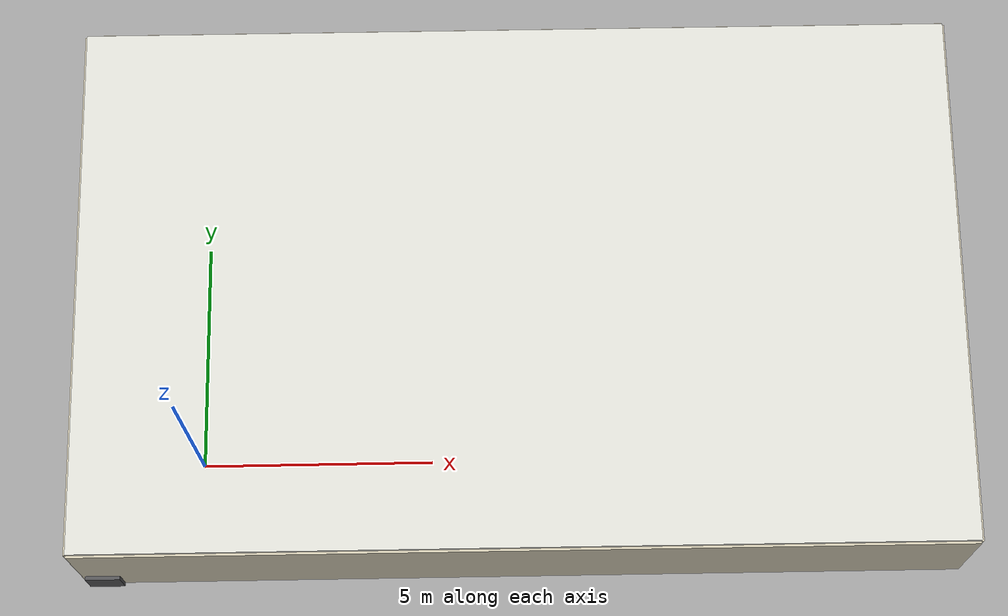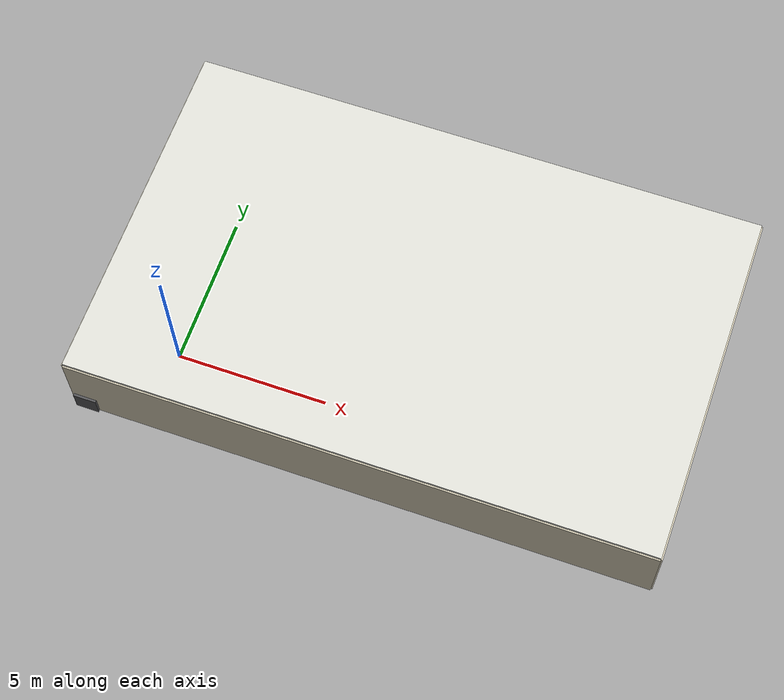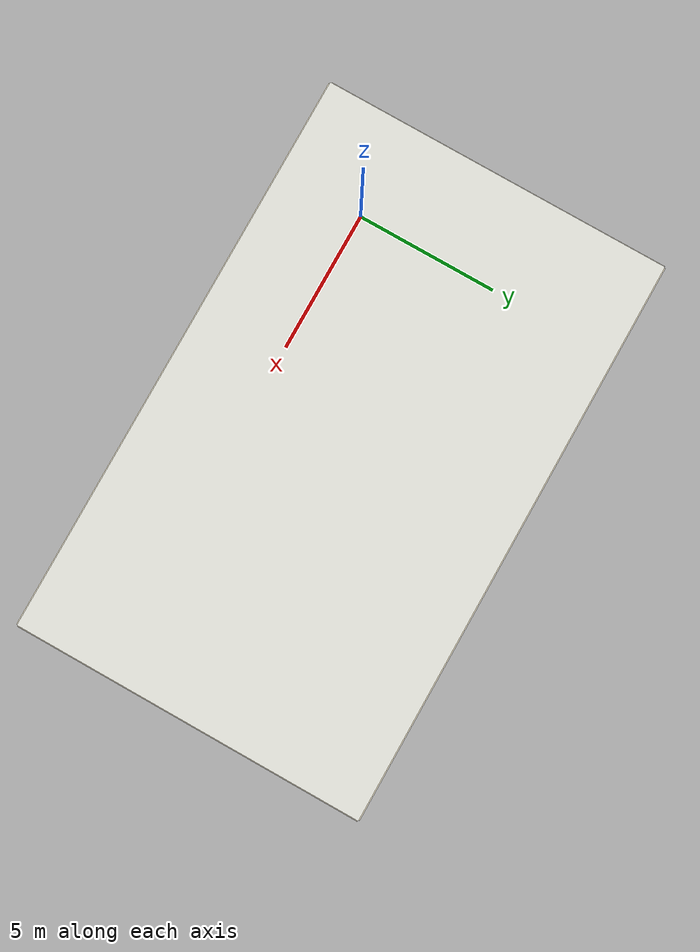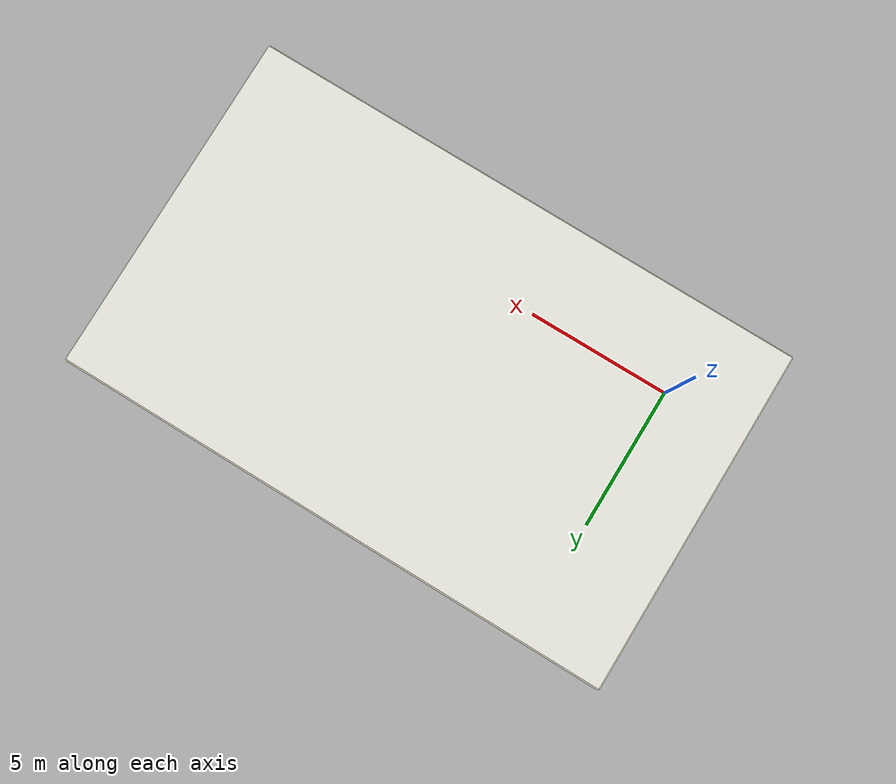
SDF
<?xml version="1.0" ?>
<sdf version='1.7'>
  <world name='default'>
    <plugin name='gazebo_ros_state' filename='libgazebo_ros_state.so'>
      <ros>
        <namespace>/</namespace>
      </ros>
      <update_rate>1000.0</update_rate>
    </plugin>

    <light name='sun' type='directional'>
      <cast_shadows>1</cast_shadows>
      <pose>0 0 10 0 -0 0</pose>
      <diffuse>0.25 0.25 0.24 1</diffuse>
      <specular>0.2 0.2 0.2 1</specular>
      <attenuation>
        <range>1000</range>
        <constant>0.9</constant>
        <linear>0.01</linear>
        <quadratic>0.001</quadratic>
      </attenuation>
      <direction>0.05 0.02 -1.0</direction>
      <spot>
        <inner_angle>0</inner_angle>
        <outer_angle>0</outer_angle>
        <falloff>0</falloff>
      </spot>
    </light>
    <model name='ground_plane'>
      <static>1</static>
      <link name='link'>
        <collision name='collision'>
          <geometry>
            <plane>
              <normal>0 0 1</normal>
              <size>100 100</size>
            </plane>
          </geometry>
          <surface>
            <friction>
              <ode>
                <mu>100</mu>
                <mu2>50</mu2>
              </ode>
              <torsional>
                <ode/>
              </torsional>
            </friction>
            <contact>
              <ode/>
            </contact>
            <bounce/>
          </surface>
          <max_contacts>10</max_contacts>
        </collision>
        <self_collide>0</self_collide>
        <enable_wind>0</enable_wind>
        <kinematic>0</kinematic>
      </link>
    </model>
    <gravity>0 0 -9.8</gravity>
    <magnetic_field>6e-06 2.3e-05 -4.2e-05</magnetic_field>
    <atmosphere type='adiabatic'/>
    <physics type='ode'>
      <max_step_size>0.001</max_step_size>
      <real_time_factor>1</real_time_factor>
      <real_time_update_rate>1000</real_time_update_rate>
    </physics>
    <scene>
      <ambient>0.68 0.68 0.66 1</ambient>
      <background>0.80 0.77 0.68 1</background>
      <shadows>1</shadows>
    </scene>
    <audio>
      <device>default</device>
    </audio>
    <wind/>
    <spherical_coordinates>
      <surface_model>EARTH_WGS84</surface_model>
      <latitude_deg>0</latitude_deg>
      <longitude_deg>0</longitude_deg>
      <elevation>0</elevation>
      <heading_deg>0</heading_deg>
    </spherical_coordinates>
    <model name='lab_12'>
    <static>1</static>
    <pose>0 0 0.001 0 0 0</pose>
    <link name='floor'>
      <visual name='floor_visual'>
        <cast_shadows>0</cast_shadows>
        <geometry><mesh><uri>model://lab_12/meshes/floor.obj</uri></mesh></geometry>
      </visual>
    </link>
    <link name='ducts'>
      <visual name='ducts_visual'>
        <geometry><mesh><uri>model://lab_12/meshes/ducts.obj</uri></mesh></geometry>
      </visual>
      <collision name='ducts_collision'>
        <geometry><mesh><uri>model://lab_12/meshes/ducts.obj</uri></mesh></geometry>
      </collision>
    </link>
    <link name='wall_0'>
      <pose>6.967 9.108 1.350 0 0 0.000</pose>
      <visual name='wall_0_visual'>
        <cast_shadows>0</cast_shadows>
        <geometry><box><size>18.885 0.100 2.700</size></box></geometry>
        <material><ambient>0.80 0.77 0.68 1</ambient><diffuse>0.80 0.77 0.68 1</diffuse></material>
      </visual>
    </link>
    <link name='wall_1'>
      <pose>6.967 -2.501 1.350 0 0 0.000</pose>
      <visual name='wall_1_visual'>
        <cast_shadows>0</cast_shadows>
        <geometry><box><size>18.885 0.100 2.700</size></box></geometry>
        <material><ambient>0.80 0.77 0.68 1</ambient><diffuse>0.80 0.77 0.68 1</diffuse></material>
      </visual>
    </link>
    <link name='wall_2'>
      <pose>-2.475 3.304 1.350 0 0 0.000</pose>
      <visual name='wall_2_visual'>
        <cast_shadows>0</cast_shadows>
        <geometry><box><size>0.100 11.608 2.700</size></box></geometry>
        <material><ambient>0.80 0.77 0.68 1</ambient><diffuse>0.80 0.77 0.68 1</diffuse></material>
      </visual>
    </link>
    <link name='wall_3'>
      <pose>16.410 3.304 1.350 0 0 0.000</pose>
      <visual name='wall_3_visual'>
        <cast_shadows>0</cast_shadows>
        <geometry><box><size>0.100 11.608 2.700</size></box></geometry>
        <material><ambient>0.80 0.77 0.68 1</ambient><diffuse>0.80 0.77 0.68 1</diffuse></material>
      </visual>
    </link>
    <link name='ceiling'>
      <pose>6.967 3.304 2.750 0 0 0.000</pose>
      <visual name='ceiling_visual'>
        <cast_shadows>0</cast_shadows>
        <geometry><box><size>18.885 11.608 0.100</size></box></geometry>
        <material><ambient>0.85 0.85 0.82 1</ambient><diffuse>0.85 0.85 0.82 1</diffuse></material>
      </visual>
    </link>
    <link name='panel_0_0'>
      <pose>-0.975 -1.001 2.690 0 0 0.000</pose>
      <visual name='panel_0_0_visual'>
        <cast_shadows>0</cast_shadows>
        <geometry><box><size>1.200 0.600 0.020</size></box></geometry>
        <material><ambient>1.00 1.00 1.00 1</ambient><diffuse>1.00 1.00 1.00 1</diffuse><emissive>1.00 1.00 1.00 1</emissive></material>
      </visual>
    </link>
    <link name='panel_0_1'>
      <pose>-0.975 1.399 2.690 0 0 0.000</pose>
      <visual name='panel_0_1_visual'>
        <cast_shadows>0</cast_shadows>
        <geometry><box><size>1.200 0.600 0.020</size></box></geometry>
        <material><ambient>1.00 1.00 1.00 1</ambient><diffuse>1.00 1.00 1.00 1</diffuse><emissive>1.00 1.00 1.00 1</emissive></material>
      </visual>
    </link>
    <link name='panel_0_2'>
      <pose>-0.975 3.799 2.690 0 0 0.000</pose>
      <visual name='panel_0_2_visual'>
        <cast_shadows>0</cast_shadows>
        <geometry><box><size>1.200 0.600 0.020</size></box></geometry>
        <material><ambient>1.00 1.00 1.00 1</ambient><diffuse>1.00 1.00 1.00 1</diffuse><emissive>1.00 1.00 1.00 1</emissive></material>
      </visual>
    </link>
    <link name='panel_0_3'>
      <pose>-0.975 6.199 2.690 0 0 0.000</pose>
      <visual name='panel_0_3_visual'>
        <cast_shadows>0</cast_shadows>
        <geometry><box><size>1.200 0.600 0.020</size></box></geometry>
        <material><ambient>1.00 1.00 1.00 1</ambient><diffuse>1.00 1.00 1.00 1</diffuse><emissive>1.00 1.00 1.00 1</emissive></material>
      </visual>
    </link>
    <link name='panel_1_0'>
      <pose>1.425 -1.001 2.690 0 0 0.000</pose>
      <visual name='panel_1_0_visual'>
        <cast_shadows>0</cast_shadows>
        <geometry><box><size>1.200 0.600 0.020</size></box></geometry>
        <material><ambient>1.00 1.00 1.00 1</ambient><diffuse>1.00 1.00 1.00 1</diffuse><emissive>1.00 1.00 1.00 1</emissive></material>
      </visual>
    </link>
    <link name='panel_1_1'>
      <pose>1.425 1.399 2.690 0 0 0.000</pose>
      <visual name='panel_1_1_visual'>
        <cast_shadows>0</cast_shadows>
        <geometry><box><size>1.200 0.600 0.020</size></box></geometry>
        <material><ambient>1.00 1.00 1.00 1</ambient><diffuse>1.00 1.00 1.00 1</diffuse><emissive>1.00 1.00 1.00 1</emissive></material>
      </visual>
    </link>
    <link name='panel_1_2'>
      <pose>1.425 3.799 2.690 0 0 0.000</pose>
      <visual name='panel_1_2_visual'>
        <cast_shadows>0</cast_shadows>
        <geometry><box><size>1.200 0.600 0.020</size></box></geometry>
        <material><ambient>1.00 1.00 1.00 1</ambient><diffuse>1.00 1.00 1.00 1</diffuse><emissive>1.00 1.00 1.00 1</emissive></material>
      </visual>
    </link>
    <link name='panel_1_3'>
      <pose>1.425 6.199 2.690 0 0 0.000</pose>
      <visual name='panel_1_3_visual'>
        <cast_shadows>0</cast_shadows>
        <geometry><box><size>1.200 0.600 0.020</size></box></geometry>
        <material><ambient>1.00 1.00 1.00 1</ambient><diffuse>1.00 1.00 1.00 1</diffuse><emissive>1.00 1.00 1.00 1</emissive></material>
      </visual>
    </link>
    <link name='panel_2_0'>
      <pose>3.825 -1.001 2.690 0 0 0.000</pose>
      <visual name='panel_2_0_visual'>
        <cast_shadows>0</cast_shadows>
        <geometry><box><size>1.200 0.600 0.020</size></box></geometry>
        <material><ambient>1.00 1.00 1.00 1</ambient><diffuse>1.00 1.00 1.00 1</diffuse><emissive>1.00 1.00 1.00 1</emissive></material>
      </visual>
    </link>
    <link name='panel_2_1'>
      <pose>3.825 1.399 2.690 0 0 0.000</pose>
      <visual name='panel_2_1_visual'>
        <cast_shadows>0</cast_shadows>
        <geometry><box><size>1.200 0.600 0.020</size></box></geometry>
        <material><ambient>1.00 1.00 1.00 1</ambient><diffuse>1.00 1.00 1.00 1</diffuse><emissive>1.00 1.00 1.00 1</emissive></material>
      </visual>
    </link>
    <link name='panel_2_2'>
      <pose>3.825 3.799 2.690 0 0 0.000</pose>
      <visual name='panel_2_2_visual'>
        <cast_shadows>0</cast_shadows>
        <geometry><box><size>1.200 0.600 0.020</size></box></geometry>
        <material><ambient>1.00 1.00 1.00 1</ambient><diffuse>1.00 1.00 1.00 1</diffuse><emissive>1.00 1.00 1.00 1</emissive></material>
      </visual>
    </link>
    <link name='panel_2_3'>
      <pose>3.825 6.199 2.690 0 0 0.000</pose>
      <visual name='panel_2_3_visual'>
        <cast_shadows>0</cast_shadows>
        <geometry><box><size>1.200 0.600 0.020</size></box></geometry>
        <material><ambient>1.00 1.00 1.00 1</ambient><diffuse>1.00 1.00 1.00 1</diffuse><emissive>1.00 1.00 1.00 1</emissive></material>
      </visual>
    </link>
    <link name='panel_3_0'>
      <pose>6.225 -1.001 2.690 0 0 0.000</pose>
      <visual name='panel_3_0_visual'>
        <cast_shadows>0</cast_shadows>
        <geometry><box><size>1.200 0.600 0.020</size></box></geometry>
        <material><ambient>1.00 1.00 1.00 1</ambient><diffuse>1.00 1.00 1.00 1</diffuse><emissive>1.00 1.00 1.00 1</emissive></material>
      </visual>
    </link>
    <link name='panel_3_1'>
      <pose>6.225 1.399 2.690 0 0 0.000</pose>
      <visual name='panel_3_1_visual'>
        <cast_shadows>0</cast_shadows>
        <geometry><box><size>1.200 0.600 0.020</size></box></geometry>
        <material><ambient>1.00 1.00 1.00 1</ambient><diffuse>1.00 1.00 1.00 1</diffuse><emissive>1.00 1.00 1.00 1</emissive></material>
      </visual>
    </link>
    <link name='panel_3_2'>
      <pose>6.225 3.799 2.690 0 0 0.000</pose>
      <visual name='panel_3_2_visual'>
        <cast_shadows>0</cast_shadows>
        <geometry><box><size>1.200 0.600 0.020</size></box></geometry>
        <material><ambient>1.00 1.00 1.00 1</ambient><diffuse>1.00 1.00 1.00 1</diffuse><emissive>1.00 1.00 1.00 1</emissive></material>
      </visual>
    </link>
    <link name='panel_3_3'>
      <pose>6.225 6.199 2.690 0 0 0.000</pose>
      <visual name='panel_3_3_visual'>
        <cast_shadows>0</cast_shadows>
        <geometry><box><size>1.200 0.600 0.020</size></box></geometry>
        <material><ambient>1.00 1.00 1.00 1</ambient><diffuse>1.00 1.00 1.00 1</diffuse><emissive>1.00 1.00 1.00 1</emissive></material>
      </visual>
    </link>
    <link name='panel_4_0'>
      <pose>8.625 -1.001 2.690 0 0 0.000</pose>
      <visual name='panel_4_0_visual'>
        <cast_shadows>0</cast_shadows>
        <geometry><box><size>1.200 0.600 0.020</size></box></geometry>
        <material><ambient>1.00 1.00 1.00 1</ambient><diffuse>1.00 1.00 1.00 1</diffuse><emissive>1.00 1.00 1.00 1</emissive></material>
      </visual>
    </link>
    <link name='panel_4_1'>
      <pose>8.625 1.399 2.690 0 0 0.000</pose>
      <visual name='panel_4_1_visual'>
        <cast_shadows>0</cast_shadows>
        <geometry><box><size>1.200 0.600 0.020</size></box></geometry>
        <material><ambient>1.00 1.00 1.00 1</ambient><diffuse>1.00 1.00 1.00 1</diffuse><emissive>1.00 1.00 1.00 1</emissive></material>
      </visual>
    </link>
    <link name='panel_4_2'>
      <pose>8.625 3.799 2.690 0 0 0.000</pose>
      <visual name='panel_4_2_visual'>
        <cast_shadows>0</cast_shadows>
        <geometry><box><size>1.200 0.600 0.020</size></box></geometry>
        <material><ambient>1.00 1.00 1.00 1</ambient><diffuse>1.00 1.00 1.00 1</diffuse><emissive>1.00 1.00 1.00 1</emissive></material>
      </visual>
    </link>
    <link name='panel_4_3'>
      <pose>8.625 6.199 2.690 0 0 0.000</pose>
      <visual name='panel_4_3_visual'>
        <cast_shadows>0</cast_shadows>
        <geometry><box><size>1.200 0.600 0.020</size></box></geometry>
        <material><ambient>1.00 1.00 1.00 1</ambient><diffuse>1.00 1.00 1.00 1</diffuse><emissive>1.00 1.00 1.00 1</emissive></material>
      </visual>
    </link>
    <link name='panel_5_0'>
      <pose>11.025 -1.001 2.690 0 0 0.000</pose>
      <visual name='panel_5_0_visual'>
        <cast_shadows>0</cast_shadows>
        <geometry><box><size>1.200 0.600 0.020</size></box></geometry>
        <material><ambient>1.00 1.00 1.00 1</ambient><diffuse>1.00 1.00 1.00 1</diffuse><emissive>1.00 1.00 1.00 1</emissive></material>
      </visual>
    </link>
    <link name='panel_5_1'>
      <pose>11.025 1.399 2.690 0 0 0.000</pose>
      <visual name='panel_5_1_visual'>
        <cast_shadows>0</cast_shadows>
        <geometry><box><size>1.200 0.600 0.020</size></box></geometry>
        <material><ambient>1.00 1.00 1.00 1</ambient><diffuse>1.00 1.00 1.00 1</diffuse><emissive>1.00 1.00 1.00 1</emissive></material>
      </visual>
    </link>
    <link name='panel_5_2'>
      <pose>11.025 3.799 2.690 0 0 0.000</pose>
      <visual name='panel_5_2_visual'>
        <cast_shadows>0</cast_shadows>
        <geometry><box><size>1.200 0.600 0.020</size></box></geometry>
        <material><ambient>1.00 1.00 1.00 1</ambient><diffuse>1.00 1.00 1.00 1</diffuse><emissive>1.00 1.00 1.00 1</emissive></material>
      </visual>
    </link>
    <link name='panel_5_3'>
      <pose>11.025 6.199 2.690 0 0 0.000</pose>
      <visual name='panel_5_3_visual'>
        <cast_shadows>0</cast_shadows>
        <geometry><box><size>1.200 0.600 0.020</size></box></geometry>
        <material><ambient>1.00 1.00 1.00 1</ambient><diffuse>1.00 1.00 1.00 1</diffuse><emissive>1.00 1.00 1.00 1</emissive></material>
      </visual>
    </link>
    <link name='panel_6_0'>
      <pose>13.425 -1.001 2.690 0 0 0.000</pose>
      <visual name='panel_6_0_visual'>
        <cast_shadows>0</cast_shadows>
        <geometry><box><size>1.200 0.600 0.020</size></box></geometry>
        <material><ambient>1.00 1.00 1.00 1</ambient><diffuse>1.00 1.00 1.00 1</diffuse><emissive>1.00 1.00 1.00 1</emissive></material>
      </visual>
    </link>
    <link name='panel_6_1'>
      <pose>13.425 1.399 2.690 0 0 0.000</pose>
      <visual name='panel_6_1_visual'>
        <cast_shadows>0</cast_shadows>
        <geometry><box><size>1.200 0.600 0.020</size></box></geometry>
        <material><ambient>1.00 1.00 1.00 1</ambient><diffuse>1.00 1.00 1.00 1</diffuse><emissive>1.00 1.00 1.00 1</emissive></material>
      </visual>
    </link>
    <link name='panel_6_2'>
      <pose>13.425 3.799 2.690 0 0 0.000</pose>
      <visual name='panel_6_2_visual'>
        <cast_shadows>0</cast_shadows>
        <geometry><box><size>1.200 0.600 0.020</size></box></geometry>
        <material><ambient>1.00 1.00 1.00 1</ambient><diffuse>1.00 1.00 1.00 1</diffuse><emissive>1.00 1.00 1.00 1</emissive></material>
      </visual>
    </link>
    <link name='panel_6_3'>
      <pose>13.425 6.199 2.690 0 0 0.000</pose>
      <visual name='panel_6_3_visual'>
        <cast_shadows>0</cast_shadows>
        <geometry><box><size>1.200 0.600 0.020</size></box></geometry>
        <material><ambient>1.00 1.00 1.00 1</ambient><diffuse>1.00 1.00 1.00 1</diffuse><emissive>1.00 1.00 1.00 1</emissive></material>
      </visual>
    </link>
    <link name='p0'>
      <pose>0.590 8.798 0.650 0 0 0.000</pose>
      <visual name='p0_visual'>
        <cast_shadows>0</cast_shadows>
        <geometry><box><size>0.900 0.500 1.300</size></box></geometry>
        <material><ambient>0.25 0.33 0.36 1</ambient><diffuse>0.25 0.33 0.36 1</diffuse></material>
      </visual>
    </link>
    <link name='p1'>
      <pose>3.643 8.798 0.650 0 0 0.000</pose>
      <visual name='p1_visual'>
        <cast_shadows>0</cast_shadows>
        <geometry><box><size>0.900 0.500 1.300</size></box></geometry>
        <material><ambient>0.25 0.33 0.36 1</ambient><diffuse>0.25 0.33 0.36 1</diffuse></material>
      </visual>
    </link>
    <link name='p2'>
      <pose>5.732 8.823 0.925 0 0 0.000</pose>
      <visual name='p2_visual'>
        <cast_shadows>0</cast_shadows>
        <geometry><box><size>0.300 0.450 1.850</size></box></geometry>
        <material><ambient>0.55 0.57 0.58 1</ambient><diffuse>0.55 0.57 0.58 1</diffuse></material>
      </visual>
    </link>
    <link name='p3'>
      <pose>6.042 8.823 0.925 0 0 0.000</pose>
      <visual name='p3_visual'>
        <cast_shadows>0</cast_shadows>
        <geometry><box><size>0.300 0.450 1.850</size></box></geometry>
        <material><ambient>0.55 0.57 0.58 1</ambient><diffuse>0.55 0.57 0.58 1</diffuse></material>
      </visual>
    </link>
    <link name='p4'>
      <pose>6.352 8.823 0.925 0 0 0.000</pose>
      <visual name='p4_visual'>
        <cast_shadows>0</cast_shadows>
        <geometry><box><size>0.300 0.450 1.850</size></box></geometry>
        <material><ambient>0.55 0.57 0.58 1</ambient><diffuse>0.55 0.57 0.58 1</diffuse></material>
      </visual>
    </link>
    <link name='p5'>
      <pose>6.662 8.823 0.925 0 0 0.000</pose>
      <visual name='p5_visual'>
        <cast_shadows>0</cast_shadows>
        <geometry><box><size>0.300 0.450 1.850</size></box></geometry>
        <material><ambient>0.55 0.57 0.58 1</ambient><diffuse>0.55 0.57 0.58 1</diffuse></material>
      </visual>
    </link>
    <link name='p6'>
      <pose>6.972 8.823 0.925 0 0 0.000</pose>
      <visual name='p6_visual'>
        <cast_shadows>0</cast_shadows>
        <geometry><box><size>0.300 0.450 1.850</size></box></geometry>
        <material><ambient>0.55 0.57 0.58 1</ambient><diffuse>0.55 0.57 0.58 1</diffuse></material>
      </visual>
    </link>
    <link name='p7'>
      <pose>7.282 8.823 0.925 0 0 0.000</pose>
      <visual name='p7_visual'>
        <cast_shadows>0</cast_shadows>
        <geometry><box><size>0.300 0.450 1.850</size></box></geometry>
        <material><ambient>0.55 0.57 0.58 1</ambient><diffuse>0.55 0.57 0.58 1</diffuse></material>
      </visual>
    </link>
    <link name='p8'>
      <pose>7.592 8.823 0.925 0 0 0.000</pose>
      <visual name='p8_visual'>
        <cast_shadows>0</cast_shadows>
        <geometry><box><size>0.300 0.450 1.850</size></box></geometry>
        <material><ambient>0.55 0.57 0.58 1</ambient><diffuse>0.55 0.57 0.58 1</diffuse></material>
      </visual>
    </link>
    <link name='p9'>
      <pose>7.902 8.823 0.925 0 0 0.000</pose>
      <visual name='p9_visual'>
        <cast_shadows>0</cast_shadows>
        <geometry><box><size>0.300 0.450 1.850</size></box></geometry>
        <material><ambient>0.55 0.57 0.58 1</ambient><diffuse>0.55 0.57 0.58 1</diffuse></material>
      </visual>
    </link>
    <link name='p10'>
      <pose>9.319 8.798 0.650 0 0 0.000</pose>
      <visual name='p10_visual'>
        <cast_shadows>0</cast_shadows>
        <geometry><box><size>0.900 0.500 1.300</size></box></geometry>
        <material><ambient>0.25 0.33 0.36 1</ambient><diffuse>0.25 0.33 0.36 1</diffuse></material>
      </visual>
    </link>
    <link name='p11'>
      <pose>11.377 8.798 0.650 0 0 0.000</pose>
      <visual name='p11_visual'>
        <cast_shadows>0</cast_shadows>
        <geometry><box><size>0.900 0.500 1.300</size></box></geometry>
        <material><ambient>0.25 0.33 0.36 1</ambient><diffuse>0.25 0.33 0.36 1</diffuse></material>
      </visual>
    </link>
    <link name='p12'>
      <pose>12.908 8.798 0.225 0 0 0.000</pose>
      <visual name='p12_visual'>
        <cast_shadows>0</cast_shadows>
        <geometry><box><size>0.600 0.500 0.450</size></box></geometry>
        <material><ambient>0.62 0.45 0.28 1</ambient><diffuse>0.62 0.45 0.28 1</diffuse></material>
      </visual>
    </link>
    <link name='p13'>
      <pose>12.908 8.798 0.675 0 0 0.000</pose>
      <visual name='p13_visual'>
        <cast_shadows>0</cast_shadows>
        <geometry><box><size>0.600 0.500 0.450</size></box></geometry>
        <material><ambient>0.62 0.45 0.28 1</ambient><diffuse>0.62 0.45 0.28 1</diffuse></material>
      </visual>
    </link>
    <link name='p14'>
      <pose>16.125 -1.493 0.925 0 0 0.000</pose>
      <visual name='p14_visual'>
        <cast_shadows>0</cast_shadows>
        <geometry><box><size>0.450 0.300 1.850</size></box></geometry>
        <material><ambient>0.55 0.57 0.58 1</ambient><diffuse>0.55 0.57 0.58 1</diffuse></material>
      </visual>
    </link>
    <link name='p15'>
      <pose>16.125 -1.183 0.925 0 0 0.000</pose>
      <visual name='p15_visual'>
        <cast_shadows>0</cast_shadows>
        <geometry><box><size>0.450 0.300 1.850</size></box></geometry>
        <material><ambient>0.55 0.57 0.58 1</ambient><diffuse>0.55 0.57 0.58 1</diffuse></material>
      </visual>
    </link>
    <link name='p16'>
      <pose>16.125 -0.873 0.925 0 0 0.000</pose>
      <visual name='p16_visual'>
        <cast_shadows>0</cast_shadows>
        <geometry><box><size>0.450 0.300 1.850</size></box></geometry>
        <material><ambient>0.55 0.57 0.58 1</ambient><diffuse>0.55 0.57 0.58 1</diffuse></material>
      </visual>
    </link>
    <link name='p17'>
      <pose>16.125 -0.563 0.925 0 0 0.000</pose>
      <visual name='p17_visual'>
        <cast_shadows>0</cast_shadows>
        <geometry><box><size>0.450 0.300 1.850</size></box></geometry>
        <material><ambient>0.55 0.57 0.58 1</ambient><diffuse>0.55 0.57 0.58 1</diffuse></material>
      </visual>
    </link>
    <link name='p18'>
      <pose>16.125 -0.253 0.925 0 0 0.000</pose>
      <visual name='p18_visual'>
        <cast_shadows>0</cast_shadows>
        <geometry><box><size>0.450 0.300 1.850</size></box></geometry>
        <material><ambient>0.55 0.57 0.58 1</ambient><diffuse>0.55 0.57 0.58 1</diffuse></material>
      </visual>
    </link>
    <link name='p19'>
      <pose>16.125 1.684 0.925 0 0 0.000</pose>
      <visual name='p19_visual'>
        <cast_shadows>0</cast_shadows>
        <geometry><box><size>0.450 0.300 1.850</size></box></geometry>
        <material><ambient>0.55 0.57 0.58 1</ambient><diffuse>0.55 0.57 0.58 1</diffuse></material>
      </visual>
    </link>
    <link name='p20'>
      <pose>16.125 1.994 0.925 0 0 0.000</pose>
      <visual name='p20_visual'>
        <cast_shadows>0</cast_shadows>
        <geometry><box><size>0.450 0.300 1.850</size></box></geometry>
        <material><ambient>0.55 0.57 0.58 1</ambient><diffuse>0.55 0.57 0.58 1</diffuse></material>
      </visual>
    </link>
    <link name='p21'>
      <pose>16.125 2.304 0.925 0 0 0.000</pose>
      <visual name='p21_visual'>
        <cast_shadows>0</cast_shadows>
        <geometry><box><size>0.450 0.300 1.850</size></box></geometry>
        <material><ambient>0.55 0.57 0.58 1</ambient><diffuse>0.55 0.57 0.58 1</diffuse></material>
      </visual>
    </link>
    <link name='p22'>
      <pose>16.125 2.614 0.925 0 0 0.000</pose>
      <visual name='p22_visual'>
        <cast_shadows>0</cast_shadows>
        <geometry><box><size>0.450 0.300 1.850</size></box></geometry>
        <material><ambient>0.55 0.57 0.58 1</ambient><diffuse>0.55 0.57 0.58 1</diffuse></material>
      </visual>
    </link>
    <link name='p23'>
      <pose>16.125 2.924 0.925 0 0 0.000</pose>
      <visual name='p23_visual'>
        <cast_shadows>0</cast_shadows>
        <geometry><box><size>0.450 0.300 1.850</size></box></geometry>
        <material><ambient>0.55 0.57 0.58 1</ambient><diffuse>0.55 0.57 0.58 1</diffuse></material>
      </visual>
    </link>
    <link name='p24'>
      <pose>16.125 3.234 0.925 0 0 0.000</pose>
      <visual name='p24_visual'>
        <cast_shadows>0</cast_shadows>
        <geometry><box><size>0.450 0.300 1.850</size></box></geometry>
        <material><ambient>0.55 0.57 0.58 1</ambient><diffuse>0.55 0.57 0.58 1</diffuse></material>
      </visual>
    </link>
    <link name='p25'>
      <pose>16.125 3.544 0.925 0 0 0.000</pose>
      <visual name='p25_visual'>
        <cast_shadows>0</cast_shadows>
        <geometry><box><size>0.450 0.300 1.850</size></box></geometry>
        <material><ambient>0.55 0.57 0.58 1</ambient><diffuse>0.55 0.57 0.58 1</diffuse></material>
      </visual>
    </link>
    <link name='p26'>
      <pose>16.125 3.854 0.925 0 0 0.000</pose>
      <visual name='p26_visual'>
        <cast_shadows>0</cast_shadows>
        <geometry><box><size>0.450 0.300 1.850</size></box></geometry>
        <material><ambient>0.55 0.57 0.58 1</ambient><diffuse>0.55 0.57 0.58 1</diffuse></material>
      </visual>
    </link>
    <link name='p27'>
      <pose>16.100 4.585 0.650 0 0 0.000</pose>
      <visual name='p27_visual'>
        <cast_shadows>0</cast_shadows>
        <geometry><box><size>0.500 0.900 1.300</size></box></geometry>
        <material><ambient>0.25 0.33 0.36 1</ambient><diffuse>0.25 0.33 0.36 1</diffuse></material>
      </visual>
    </link>
    <link name='p28'>
      <pose>-0.119 -2.191 0.225 0 0 0.000</pose>
      <visual name='p28_visual'>
        <cast_shadows>0</cast_shadows>
        <geometry><box><size>0.600 0.500 0.450</size></box></geometry>
        <material><ambient>0.62 0.45 0.28 1</ambient><diffuse>0.62 0.45 0.28 1</diffuse></material>
      </visual>
    </link>
    <link name='p29'>
      <pose>0.914 -2.416 0.375 0 0 0.000</pose>
      <visual name='p29_visual'>
        <cast_shadows>0</cast_shadows>
        <geometry><box><size>1.800 0.050 0.750</size></box></geometry>
        <material><ambient>0.93 0.93 0.92 1</ambient><diffuse>0.93 0.93 0.92 1</diffuse></material>
      </visual>
    </link>
    <link name='p30'>
      <pose>3.360 -2.191 0.225 0 0 0.000</pose>
      <visual name='p30_visual'>
        <cast_shadows>0</cast_shadows>
        <geometry><box><size>0.600 0.500 0.450</size></box></geometry>
        <material><ambient>0.62 0.45 0.28 1</ambient><diffuse>0.62 0.45 0.28 1</diffuse></material>
      </visual>
    </link>
    <link name='p31'>
      <pose>3.360 -2.191 0.675 0 0 0.000</pose>
      <visual name='p31_visual'>
        <cast_shadows>0</cast_shadows>
        <geometry><box><size>0.600 0.500 0.450</size></box></geometry>
        <material><ambient>0.62 0.45 0.28 1</ambient><diffuse>0.62 0.45 0.28 1</diffuse></material>
      </visual>
    </link>
    <link name='p32'>
      <pose>4.629 -2.066 0.375 0 0 0.000</pose>
      <visual name='p32_visual'>
        <cast_shadows>0</cast_shadows>
        <geometry><box><size>1.500 0.750 0.750</size></box></geometry>
        <material><ambient>0.32 0.32 0.33 1</ambient><diffuse>0.32 0.32 0.33 1</diffuse></material>
      </visual>
    </link>
    <link name='p33'>
      <pose>7.197 -2.191 0.225 0 0 0.000</pose>
      <visual name='p33_visual'>
        <cast_shadows>0</cast_shadows>
        <geometry><box><size>0.600 0.500 0.450</size></box></geometry>
        <material><ambient>0.62 0.45 0.28 1</ambient><diffuse>0.62 0.45 0.28 1</diffuse></material>
      </visual>
    </link>
    <link name='p34'>
      <pose>8.345 -2.191 0.225 0 0 0.000</pose>
      <visual name='p34_visual'>
        <cast_shadows>0</cast_shadows>
        <geometry><box><size>0.600 0.500 0.450</size></box></geometry>
        <material><ambient>0.62 0.45 0.28 1</ambient><diffuse>0.62 0.45 0.28 1</diffuse></material>
      </visual>
    </link>
    <link name='p35'>
      <pose>8.345 -2.191 0.675 0 0 0.000</pose>
      <visual name='p35_visual'>
        <cast_shadows>0</cast_shadows>
        <geometry><box><size>0.600 0.500 0.450</size></box></geometry>
        <material><ambient>0.62 0.45 0.28 1</ambient><diffuse>0.62 0.45 0.28 1</diffuse></material>
      </visual>
    </link>
    <link name='p36'>
      <pose>10.467 -2.416 0.375 0 0 0.000</pose>
      <visual name='p36_visual'>
        <cast_shadows>0</cast_shadows>
        <geometry><box><size>1.800 0.050 0.750</size></box></geometry>
        <material><ambient>0.93 0.93 0.92 1</ambient><diffuse>0.93 0.93 0.92 1</diffuse></material>
      </visual>
    </link>
    <link name='p37'>
      <pose>13.845 -2.191 0.650 0 0 0.000</pose>
      <visual name='p37_visual'>
        <cast_shadows>0</cast_shadows>
        <geometry><box><size>0.900 0.500 1.300</size></box></geometry>
        <material><ambient>0.25 0.33 0.36 1</ambient><diffuse>0.25 0.33 0.36 1</diffuse></material>
      </visual>
    </link>
    <link name='p38'>
      <pose>-2.040 -1.882 0.375 0 0 0.000</pose>
      <visual name='p38_visual'>
        <cast_shadows>0</cast_shadows>
        <geometry><box><size>0.750 1.500 0.750</size></box></geometry>
        <material><ambient>0.32 0.32 0.33 1</ambient><diffuse>0.32 0.32 0.33 1</diffuse></material>
      </visual>
    </link>
    <link name='p39'>
      <pose>-2.165 1.001 0.225 0 0 0.000</pose>
      <visual name='p39_visual'>
        <cast_shadows>0</cast_shadows>
        <geometry><box><size>0.500 0.600 0.450</size></box></geometry>
        <material><ambient>0.62 0.45 0.28 1</ambient><diffuse>0.62 0.45 0.28 1</diffuse></material>
      </visual>
    </link>
    <link name='p40'>
      <pose>-2.165 1.001 0.675 0 0 0.000</pose>
      <visual name='p40_visual'>
        <cast_shadows>0</cast_shadows>
        <geometry><box><size>0.500 0.600 0.450</size></box></geometry>
        <material><ambient>0.62 0.45 0.28 1</ambient><diffuse>0.62 0.45 0.28 1</diffuse></material>
      </visual>
    </link>
    <link name='p41'>
      <pose>-2.165 1.001 1.125 0 0 0.000</pose>
      <visual name='p41_visual'>
        <cast_shadows>0</cast_shadows>
        <geometry><box><size>0.500 0.600 0.450</size></box></geometry>
        <material><ambient>0.62 0.45 0.28 1</ambient><diffuse>0.62 0.45 0.28 1</diffuse></material>
      </visual>
    </link>
    <link name='p42'>
      <pose>-2.190 2.273 0.925 0 0 0.000</pose>
      <visual name='p42_visual'>
        <cast_shadows>0</cast_shadows>
        <geometry><box><size>0.450 0.300 1.850</size></box></geometry>
        <material><ambient>0.55 0.57 0.58 1</ambient><diffuse>0.55 0.57 0.58 1</diffuse></material>
      </visual>
    </link>
    <link name='p43'>
      <pose>-2.190 2.583 0.925 0 0 0.000</pose>
      <visual name='p43_visual'>
        <cast_shadows>0</cast_shadows>
        <geometry><box><size>0.450 0.300 1.850</size></box></geometry>
        <material><ambient>0.55 0.57 0.58 1</ambient><diffuse>0.55 0.57 0.58 1</diffuse></material>
      </visual>
    </link>
    <link name='p44'>
      <pose>-2.190 2.893 0.925 0 0 0.000</pose>
      <visual name='p44_visual'>
        <cast_shadows>0</cast_shadows>
        <geometry><box><size>0.450 0.300 1.850</size></box></geometry>
        <material><ambient>0.55 0.57 0.58 1</ambient><diffuse>0.55 0.57 0.58 1</diffuse></material>
      </visual>
    </link>
    <link name='p45'>
      <pose>-2.190 3.203 0.925 0 0 0.000</pose>
      <visual name='p45_visual'>
        <cast_shadows>0</cast_shadows>
        <geometry><box><size>0.450 0.300 1.850</size></box></geometry>
        <material><ambient>0.55 0.57 0.58 1</ambient><diffuse>0.55 0.57 0.58 1</diffuse></material>
      </visual>
    </link>
    <link name='p46'>
      <pose>-2.190 3.513 0.925 0 0 0.000</pose>
      <visual name='p46_visual'>
        <cast_shadows>0</cast_shadows>
        <geometry><box><size>0.450 0.300 1.850</size></box></geometry>
        <material><ambient>0.55 0.57 0.58 1</ambient><diffuse>0.55 0.57 0.58 1</diffuse></material>
      </visual>
    </link>
    <link name='p47'>
      <pose>-2.165 4.757 0.650 0 0 0.000</pose>
      <visual name='p47_visual'>
        <cast_shadows>0</cast_shadows>
        <geometry><box><size>0.500 0.900 1.300</size></box></geometry>
        <material><ambient>0.25 0.33 0.36 1</ambient><diffuse>0.25 0.33 0.36 1</diffuse></material>
      </visual>
    </link>
    <link name='p48'>
      <pose>-2.190 7.116 0.925 0 0 0.000</pose>
      <visual name='p48_visual'>
        <cast_shadows>0</cast_shadows>
        <geometry><box><size>0.450 0.300 1.850</size></box></geometry>
        <material><ambient>0.55 0.57 0.58 1</ambient><diffuse>0.55 0.57 0.58 1</diffuse></material>
      </visual>
    </link>
    <link name='p49'>
      <pose>-2.190 7.426 0.925 0 0 0.000</pose>
      <visual name='p49_visual'>
        <cast_shadows>0</cast_shadows>
        <geometry><box><size>0.450 0.300 1.850</size></box></geometry>
        <material><ambient>0.55 0.57 0.58 1</ambient><diffuse>0.55 0.57 0.58 1</diffuse></material>
      </visual>
    </link>
    <link name='p50'>
      <pose>-2.190 7.736 0.925 0 0 0.000</pose>
      <visual name='p50_visual'>
        <cast_shadows>0</cast_shadows>
        <geometry><box><size>0.450 0.300 1.850</size></box></geometry>
        <material><ambient>0.55 0.57 0.58 1</ambient><diffuse>0.55 0.57 0.58 1</diffuse></material>
      </visual>
    </link>
    <link name='p51'>
      <pose>-2.190 8.046 0.925 0 0 0.000</pose>
      <visual name='p51_visual'>
        <cast_shadows>0</cast_shadows>
        <geometry><box><size>0.450 0.300 1.850</size></box></geometry>
        <material><ambient>0.55 0.57 0.58 1</ambient><diffuse>0.55 0.57 0.58 1</diffuse></material>
      </visual>
    </link>
    <link name='p52'>
      <pose>-2.190 8.356 0.925 0 0 0.000</pose>
      <visual name='p52_visual'>
        <cast_shadows>0</cast_shadows>
        <geometry><box><size>0.450 0.300 1.850</size></box></geometry>
        <material><ambient>0.55 0.57 0.58 1</ambient><diffuse>0.55 0.57 0.58 1</diffuse></material>
      </visual>
    </link>
    <link name='p53'>
      <pose>-2.190 8.666 0.925 0 0 0.000</pose>
      <visual name='p53_visual'>
        <cast_shadows>0</cast_shadows>
        <geometry><box><size>0.450 0.300 1.850</size></box></geometry>
        <material><ambient>0.55 0.57 0.58 1</ambient><diffuse>0.55 0.57 0.58 1</diffuse></material>
      </visual>
    </link>
    <link name='p54'>
      <pose>-2.190 8.976 0.925 0 0 0.000</pose>
      <visual name='p54_visual'>
        <cast_shadows>0</cast_shadows>
        <geometry><box><size>0.450 0.300 1.850</size></box></geometry>
        <material><ambient>0.55 0.57 0.58 1</ambient><diffuse>0.55 0.57 0.58 1</diffuse></material>
      </visual>
    </link>
  </model>
  </world>
</sdf>
